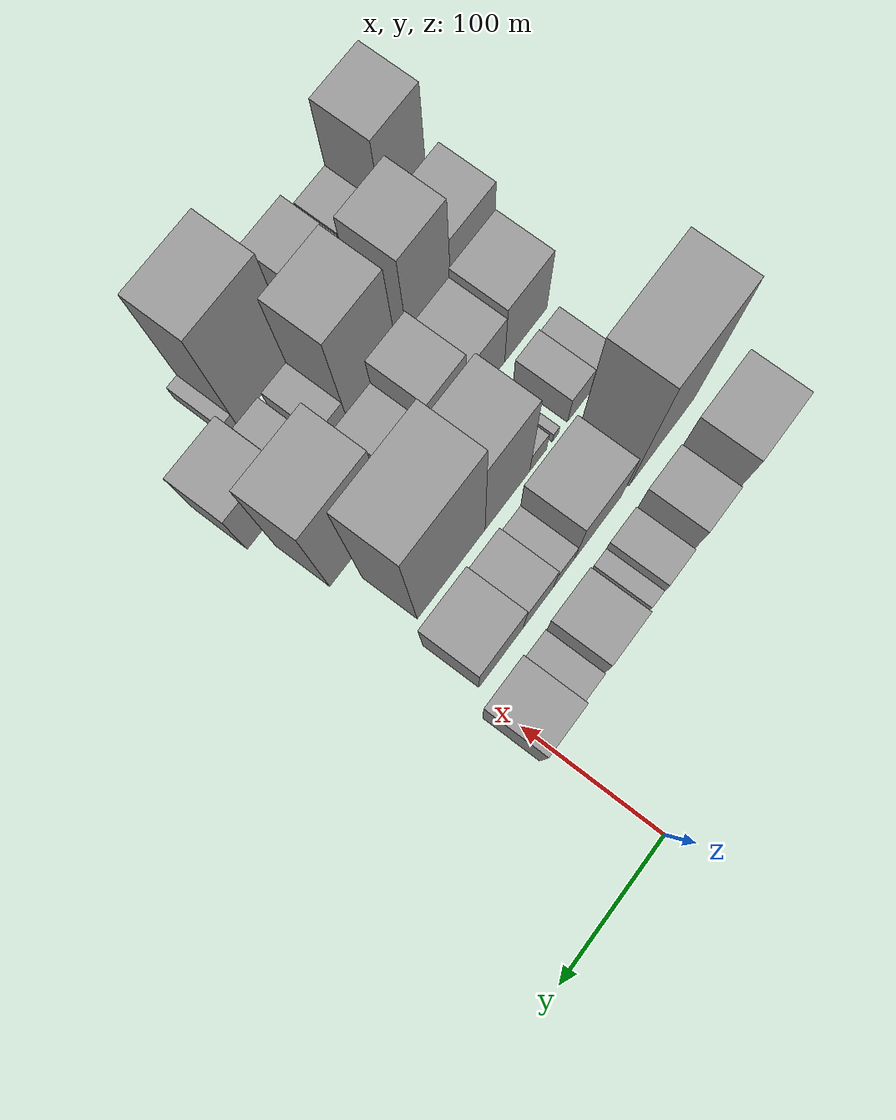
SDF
<sdf version="1.6">
 <world name="default">
  <model name="building_19">
   <static>1</static>
   <pose>100.0000 -204.6399 0 0.000000 0.000000 0.000000</pose>
   <link name="link">
    <pose>0 0 42.00 0 0 0</pose>
    <collision name="collision"><geometry><box><size>40.0000 46.9999 84.0000</size></box></geometry></collision>
    <visual name="visual">
     <cast_shadows>0</cast_shadows>
     <geometry><box><size>40.0000 46.9999 84.0000</size></box></geometry>
     <material>
      <script>
       <uri>model://grey_wall/materials/scripts</uri>
       <uri>model://grey_wall/materials/textures</uri>
       <name>vrc/grey_wall</name>
      </script>
     </material>
    </visual>
   </link>
  </model>
  <model name="building_20">
   <static>1</static>
   <pose>100.0000 -176.0807 0 0.000000 0.000000 0.000000</pose>
   <link name="link">
    <pose>0 0 10.50 0 0 0</pose>
    <collision name="collision"><geometry><box><size>40.0000 10.1186 21.0000</size></box></geometry></collision>
    <visual name="visual">
     <cast_shadows>0</cast_shadows>
     <geometry><box><size>40.0000 10.1186 21.0000</size></box></geometry>
     <material>
      <script>
       <uri>model://grey_wall/materials/scripts</uri>
       <uri>model://grey_wall/materials/textures</uri>
       <name>vrc/grey_wall</name>
      </script>
     </material>
    </visual>
   </link>
  </model>
  <model name="building_21">
   <static>1</static>
   <pose>100.0000 -155.4056 0 0.000000 0.000000 0.000000</pose>
   <link name="link">
    <pose>0 0 30.00 0 0 0</pose>
    <collision name="collision"><geometry><box><size>40.0000 31.2315 60.0000</size></box></geometry></collision>
    <visual name="visual">
     <cast_shadows>0</cast_shadows>
     <geometry><box><size>40.0000 31.2315 60.0000</size></box></geometry>
     <material>
      <script>
       <uri>model://grey_wall/materials/scripts</uri>
       <uri>model://grey_wall/materials/textures</uri>
       <name>vrc/grey_wall</name>
      </script>
     </material>
    </visual>
   </link>
  </model>
  <model name="building_22">
   <static>1</static>
   <pose>100.0000 -119.2429 0 0.000000 0.000000 0.000000</pose>
   <link name="link">
    <pose>0 0 22.50 0 0 0</pose>
    <collision name="collision"><geometry><box><size>40.0000 25.0939 45.0000</size></box></geometry></collision>
    <visual name="visual">
     <cast_shadows>0</cast_shadows>
     <geometry><box><size>40.0000 25.0939 45.0000</size></box></geometry>
     <material>
      <script>
       <uri>model://grey_wall/materials/scripts</uri>
       <uri>model://grey_wall/materials/textures</uri>
       <name>vrc/grey_wall</name>
      </script>
     </material>
    </visual>
   </link>
  </model>
  <model name="building_23">
   <static>1</static>
   <pose>100.0000 -100.5905 0 0.000000 0.000000 0.000000</pose>
   <link name="link">
    <pose>0 0 13.50 0 0 0</pose>
    <collision name="collision"><geometry><box><size>40.0000 12.2109 27.0000</size></box></geometry></collision>
    <visual name="visual">
     <cast_shadows>0</cast_shadows>
     <geometry><box><size>40.0000 12.2109 27.0000</size></box></geometry>
     <material>
      <script>
       <uri>model://grey_wall/materials/scripts</uri>
       <uri>model://grey_wall/materials/textures</uri>
       <name>vrc/grey_wall</name>
      </script>
     </material>
    </visual>
   </link>
  </model>
  <model name="building_24">
   <static>1</static>
   <pose>100.0000 -68.5323 0 0.000000 0.000000 0.000000</pose>
   <link name="link">
    <pose>0 0 30.00 0 0 0</pose>
    <collision name="collision"><geometry><box><size>40.0000 35.9056 60.0000</size></box></geometry></collision>
    <visual name="visual">
     <cast_shadows>0</cast_shadows>
     <geometry><box><size>40.0000 35.9056 60.0000</size></box></geometry>
     <material>
      <script>
       <uri>model://grey_wall/materials/scripts</uri>
       <uri>model://grey_wall/materials/textures</uri>
       <name>vrc/grey_wall</name>
      </script>
     </material>
    </visual>
   </link>
  </model>
  <model name="building_25">
   <static>1</static>
   <pose>100.0000 -35.7939 0 0.000000 0.000000 0.000000</pose>
   <link name="link">
    <pose>0 0 21.00 0 0 0</pose>
    <collision name="collision"><geometry><box><size>40.0000 23.5713 42.0000</size></box></geometry></collision>
    <visual name="visual">
     <cast_shadows>0</cast_shadows>
     <geometry><box><size>40.0000 23.5713 42.0000</size></box></geometry>
     <material>
      <script>
       <uri>model://grey_wall/materials/scripts</uri>
       <uri>model://grey_wall/materials/textures</uri>
       <name>vrc/grey_wall</name>
      </script>
     </material>
    </visual>
   </link>
  </model>
  <model name="building_26">
   <static>1</static>
   <pose>100.0000 -7.3441 0 0.000000 0.000000 0.000000</pose>
   <link name="link">
    <pose>0 0 46.50 0 0 0</pose>
    <collision name="collision"><geometry><box><size>40.0000 33.3283 93.0000</size></box></geometry></collision>
    <visual name="visual">
     <cast_shadows>0</cast_shadows>
     <geometry><box><size>40.0000 33.3283 93.0000</size></box></geometry>
     <material>
      <script>
       <uri>model://grey_wall/materials/scripts</uri>
       <uri>model://grey_wall/materials/textures</uri>
       <name>vrc/grey_wall</name>
      </script>
     </material>
    </visual>
   </link>
  </model>
  <model name="building_70">
   <static>1</static>
   <pose>152.0000 -183.7297 0 0.000000 0.000000 0.000000</pose>
   <link name="link">
    <pose>0 0 93.00 0 0 0</pose>
    <collision name="collision"><geometry><box><size>40.0000 66.1733 186.0000</size></box></geometry></collision>
    <visual name="visual">
     <cast_shadows>0</cast_shadows>
     <geometry><box><size>40.0000 66.1733 186.0000</size></box></geometry>
     <material>
      <script>
       <uri>model://grey_wall/materials/scripts</uri>
       <uri>model://grey_wall/materials/textures</uri>
       <name>vrc/grey_wall</name>
      </script>
     </material>
    </visual>
   </link>
  </model>
  <model name="building_71">
   <static>1</static>
   <pose>152.0000 -118.9052 0 0.000000 0.000000 0.000000</pose>
   <link name="link">
    <pose>0 0 43.50 0 0 0</pose>
    <collision name="collision"><geometry><box><size>40.0000 47.4757 87.0000</size></box></geometry></collision>
    <visual name="visual">
     <cast_shadows>0</cast_shadows>
     <geometry><box><size>40.0000 47.4757 87.0000</size></box></geometry>
     <material>
      <script>
       <uri>model://grey_wall/materials/scripts</uri>
       <uri>model://grey_wall/materials/textures</uri>
       <name>vrc/grey_wall</name>
      </script>
     </material>
    </visual>
   </link>
  </model>
  <model name="building_72">
   <static>1</static>
   <pose>152.0000 -85.0644 0 0.000000 0.000000 0.000000</pose>
   <link name="link">
    <pose>0 0 19.50 0 0 0</pose>
    <collision name="collision"><geometry><box><size>40.0000 20.2058 39.0000</size></box></geometry></collision>
    <visual name="visual">
     <cast_shadows>0</cast_shadows>
     <geometry><box><size>40.0000 20.2058 39.0000</size></box></geometry>
     <material>
      <script>
       <uri>model://grey_wall/materials/scripts</uri>
       <uri>model://grey_wall/materials/textures</uri>
       <name>vrc/grey_wall</name>
      </script>
     </material>
    </visual>
   </link>
  </model>
  <model name="building_73">
   <static>1</static>
   <pose>152.0000 -60.2462 0 0.000000 0.000000 0.000000</pose>
   <link name="link">
    <pose>0 0 28.50 0 0 0</pose>
    <collision name="collision"><geometry><box><size>40.0000 29.4305 57.0000</size></box></geometry></collision>
    <visual name="visual">
     <cast_shadows>0</cast_shadows>
     <geometry><box><size>40.0000 29.4305 57.0000</size></box></geometry>
     <material>
      <script>
       <uri>model://grey_wall/materials/scripts</uri>
       <uri>model://grey_wall/materials/textures</uri>
       <name>vrc/grey_wall</name>
      </script>
     </material>
    </visual>
   </link>
  </model>
  <model name="building_74">
   <static>1</static>
   <pose>152.0000 -24.3609 0 0.000000 0.000000 0.000000</pose>
   <link name="link">
    <pose>0 0 36.00 0 0 0</pose>
    <collision name="collision"><geometry><box><size>40.0000 42.3402 72.0000</size></box></geometry></collision>
    <visual name="visual">
     <cast_shadows>0</cast_shadows>
     <geometry><box><size>40.0000 42.3402 72.0000</size></box></geometry>
     <material>
      <script>
       <uri>model://grey_wall/materials/scripts</uri>
       <uri>model://grey_wall/materials/textures</uri>
       <name>vrc/grey_wall</name>
      </script>
     </material>
    </visual>
   </link>
  </model>
  <model name="building_123">
   <static>1</static>
   <pose>204.0000 -193.3924 0 0.000000 0.000000 0.000000</pose>
   <link name="link">
    <pose>0 0 18.00 0 0 0</pose>
    <collision name="collision"><geometry><box><size>40.0000 20.1651 36.0000</size></box></geometry></collision>
    <visual name="visual">
     <cast_shadows>0</cast_shadows>
     <geometry><box><size>40.0000 20.1651 36.0000</size></box></geometry>
     <material>
      <script>
       <uri>model://grey_wall/materials/scripts</uri>
       <uri>model://grey_wall/materials/textures</uri>
       <name>vrc/grey_wall</name>
      </script>
     </material>
    </visual>
   </link>
  </model>
  <model name="building_124">
   <static>1</static>
   <pose>204.0000 -171.8437 0 0.000000 0.000000 0.000000</pose>
   <link name="link">
    <pose>0 0 21.00 0 0 0</pose>
    <collision name="collision"><geometry><box><size>40.0000 22.9323 42.0000</size></box></geometry></collision>
    <visual name="visual">
     <cast_shadows>0</cast_shadows>
     <geometry><box><size>40.0000 22.9323 42.0000</size></box></geometry>
     <material>
      <script>
       <uri>model://grey_wall/materials/scripts</uri>
       <uri>model://grey_wall/materials/textures</uri>
       <name>vrc/grey_wall</name>
      </script>
     </material>
    </visual>
   </link>
  </model>
  <model name="building_125">
   <static>1</static>
   <pose>204.0000 -148.2840 0 0.000000 0.000000 0.000000</pose>
   <link name="link">
    <pose>0 0 7.50 0 0 0</pose>
    <collision name="collision"><geometry><box><size>40.0000 6.1870 15.0000</size></box></geometry></collision>
    <visual name="visual">
     <cast_shadows>0</cast_shadows>
     <geometry><box><size>40.0000 6.1870 15.0000</size></box></geometry>
     <material>
      <script>
       <uri>model://grey_wall/materials/scripts</uri>
       <uri>model://grey_wall/materials/textures</uri>
       <name>vrc/grey_wall</name>
      </script>
     </material>
    </visual>
   </link>
  </model>
  <model name="building_126">
   <static>1</static>
   <pose>204.0000 -130.8591 0 0.000000 0.000000 0.000000</pose>
   <link name="link">
    <pose>0 0 16.50 0 0 0</pose>
    <collision name="collision"><geometry><box><size>40.0000 16.6630 33.0000</size></box></geometry></collision>
    <visual name="visual">
     <cast_shadows>0</cast_shadows>
     <geometry><box><size>40.0000 16.6630 33.0000</size></box></geometry>
     <material>
      <script>
       <uri>model://grey_wall/materials/scripts</uri>
       <uri>model://grey_wall/materials/textures</uri>
       <name>vrc/grey_wall</name>
      </script>
     </material>
    </visual>
   </link>
  </model>
  <model name="building_127">
   <static>1</static>
   <pose>204.0000 -100.5731 0 0.000000 0.000000 0.000000</pose>
   <link name="link">
    <pose>0 0 70.50 0 0 0</pose>
    <collision name="collision"><geometry><box><size>40.0000 43.9089 141.0000</size></box></geometry></collision>
    <visual name="visual">
     <cast_shadows>0</cast_shadows>
     <geometry><box><size>40.0000 43.9089 141.0000</size></box></geometry>
     <material>
      <script>
       <uri>model://grey_wall/materials/scripts</uri>
       <uri>model://grey_wall/materials/textures</uri>
       <name>vrc/grey_wall</name>
      </script>
     </material>
    </visual>
   </link>
  </model>
  <model name="building_128">
   <static>1</static>
   <pose>204.0000 -46.0303 0 0.000000 0.000000 0.000000</pose>
   <link name="link">
    <pose>0 0 90.00 0 0 0</pose>
    <collision name="collision"><geometry><box><size>40.0000 65.1767 180.0000</size></box></geometry></collision>
    <visual name="visual">
     <cast_shadows>0</cast_shadows>
     <geometry><box><size>40.0000 65.1767 180.0000</size></box></geometry>
     <material>
      <script>
       <uri>model://grey_wall/materials/scripts</uri>
       <uri>model://grey_wall/materials/textures</uri>
       <name>vrc/grey_wall</name>
      </script>
     </material>
    </visual>
   </link>
  </model>
  <model name="building_177">
   <static>1</static>
   <pose>256.0000 -189.2890 0 0.000000 0.000000 0.000000</pose>
   <link name="link">
    <pose>0 0 42.00 0 0 0</pose>
    <collision name="collision"><geometry><box><size>40.0000 42.6374 84.0000</size></box></geometry></collision>
    <visual name="visual">
     <cast_shadows>0</cast_shadows>
     <geometry><box><size>40.0000 42.6374 84.0000</size></box></geometry>
     <material>
      <script>
       <uri>model://grey_wall/materials/scripts</uri>
       <uri>model://grey_wall/materials/textures</uri>
       <name>vrc/grey_wall</name>
      </script>
     </material>
    </visual>
   </link>
  </model>
  <model name="building_178">
   <static>1</static>
   <pose>256.0000 -149.2890 0 0.000000 0.000000 0.000000</pose>
   <link name="link">
    <pose>0 0 36.00 0 0 0</pose>
    <collision name="collision"><geometry><box><size>40.0000 37.3625 72.0000</size></box></geometry></collision>
    <visual name="visual">
     <cast_shadows>0</cast_shadows>
     <geometry><box><size>40.0000 37.3625 72.0000</size></box></geometry>
     <material>
      <script>
       <uri>model://grey_wall/materials/scripts</uri>
       <uri>model://grey_wall/materials/textures</uri>
       <name>vrc/grey_wall</name>
      </script>
     </material>
    </visual>
   </link>
  </model>
  <model name="building_179">
   <static>1</static>
   <pose>256.0000 -113.4923 0 0.000000 0.000000 0.000000</pose>
   <link name="link">
    <pose>0 0 49.50 0 0 0</pose>
    <collision name="collision"><geometry><box><size>40.0000 34.2308 99.0000</size></box></geometry></collision>
    <visual name="visual">
     <cast_shadows>0</cast_shadows>
     <geometry><box><size>40.0000 34.2308 99.0000</size></box></geometry>
     <material>
      <script>
       <uri>model://grey_wall/materials/scripts</uri>
       <uri>model://grey_wall/materials/textures</uri>
       <name>vrc/grey_wall</name>
      </script>
     </material>
    </visual>
   </link>
  </model>
  <model name="building_180">
   <static>1</static>
   <pose>256.0000 -80.3192 0 0.000000 0.000000 0.000000</pose>
   <link name="link">
    <pose>0 0 31.50 0 0 0</pose>
    <collision name="collision"><geometry><box><size>40.0000 32.1155 63.0000</size></box></geometry></collision>
    <visual name="visual">
     <cast_shadows>0</cast_shadows>
     <geometry><box><size>40.0000 32.1155 63.0000</size></box></geometry>
     <material>
      <script>
       <uri>model://grey_wall/materials/scripts</uri>
       <uri>model://grey_wall/materials/textures</uri>
       <name>vrc/grey_wall</name>
      </script>
     </material>
    </visual>
   </link>
  </model>
  <model name="building_181">
   <static>1</static>
   <pose>256.0000 -58.3119 0 0.000000 0.000000 0.000000</pose>
   <link name="link">
    <pose>0 0 13.50 0 0 0</pose>
    <collision name="collision"><geometry><box><size>40.0000 11.8991 27.0000</size></box></geometry></collision>
    <visual name="visual">
     <cast_shadows>0</cast_shadows>
     <geometry><box><size>40.0000 11.8991 27.0000</size></box></geometry>
     <material>
      <script>
       <uri>model://grey_wall/materials/scripts</uri>
       <uri>model://grey_wall/materials/textures</uri>
       <name>vrc/grey_wall</name>
      </script>
     </material>
    </visual>
   </link>
  </model>
  <model name="building_182">
   <static>1</static>
   <pose>256.0000 -25.1957 0 0.000000 0.000000 0.000000</pose>
   <link name="link">
    <pose>0 0 70.50 0 0 0</pose>
    <collision name="collision"><geometry><box><size>40.0000 54.3334 141.0000</size></box></geometry></collision>
    <visual name="visual">
     <cast_shadows>0</cast_shadows>
     <geometry><box><size>40.0000 54.3334 141.0000</size></box></geometry>
     <material>
      <script>
       <uri>model://grey_wall/materials/scripts</uri>
       <uri>model://grey_wall/materials/textures</uri>
       <name>vrc/grey_wall</name>
      </script>
     </material>
    </visual>
   </link>
  </model>
  <model name="building_224">
   <static>1</static>
   <pose>308.0000 -205.4859 0 0.000000 0.000000 0.000000</pose>
   <link name="link">
    <pose>0 0 37.50 0 0 0</pose>
    <collision name="collision"><geometry><box><size>40.0000 43.8414 75.0000</size></box></geometry></collision>
    <visual name="visual">
     <cast_shadows>0</cast_shadows>
     <geometry><box><size>40.0000 43.8414 75.0000</size></box></geometry>
     <material>
      <script>
       <uri>model://grey_wall/materials/scripts</uri>
       <uri>model://grey_wall/materials/textures</uri>
       <name>vrc/grey_wall</name>
      </script>
     </material>
    </visual>
   </link>
  </model>
  <model name="building_225">
   <static>1</static>
   <pose>308.0000 -162.4692 0 0.000000 0.000000 0.000000</pose>
   <link name="link">
    <pose>0 0 63.00 0 0 0</pose>
    <collision name="collision"><geometry><box><size>40.0000 42.1920 126.0000</size></box></geometry></collision>
    <visual name="visual">
     <cast_shadows>0</cast_shadows>
     <geometry><box><size>40.0000 42.1920 126.0000</size></box></geometry>
     <material>
      <script>
       <uri>model://grey_wall/materials/scripts</uri>
       <uri>model://grey_wall/materials/textures</uri>
       <name>vrc/grey_wall</name>
      </script>
     </material>
    </visual>
   </link>
  </model>
  <model name="building_226">
   <static>1</static>
   <pose>308.0000 -136.3173 0 0.000000 0.000000 0.000000</pose>
   <link name="link">
    <pose>0 0 10.50 0 0 0</pose>
    <collision name="collision"><geometry><box><size>40.0000 10.1119 21.0000</size></box></geometry></collision>
    <visual name="visual">
     <cast_shadows>0</cast_shadows>
     <geometry><box><size>40.0000 10.1119 21.0000</size></box></geometry>
     <material>
      <script>
       <uri>model://grey_wall/materials/scripts</uri>
       <uri>model://grey_wall/materials/textures</uri>
       <name>vrc/grey_wall</name>
      </script>
     </material>
    </visual>
   </link>
  </model>
  <model name="building_227">
   <static>1</static>
   <pose>308.0000 -106.7428 0 0.000000 0.000000 0.000000</pose>
   <link name="link">
    <pose>0 0 67.50 0 0 0</pose>
    <collision name="collision"><geometry><box><size>40.0000 49.0371 135.0000</size></box></geometry></collision>
    <visual name="visual">
     <cast_shadows>0</cast_shadows>
     <geometry><box><size>40.0000 49.0371 135.0000</size></box></geometry>
     <material>
      <script>
       <uri>model://grey_wall/materials/scripts</uri>
       <uri>model://grey_wall/materials/textures</uri>
       <name>vrc/grey_wall</name>
      </script>
     </material>
    </visual>
   </link>
  </model>
  <model name="building_228">
   <static>1</static>
   <pose>308.0000 -70.8927 0 0.000000 0.000000 0.000000</pose>
   <link name="link">
    <pose>0 0 19.50 0 0 0</pose>
    <collision name="collision"><geometry><box><size>40.0000 22.6629 39.0000</size></box></geometry></collision>
    <visual name="visual">
     <cast_shadows>0</cast_shadows>
     <geometry><box><size>40.0000 22.6629 39.0000</size></box></geometry>
     <material>
      <script>
       <uri>model://grey_wall/materials/scripts</uri>
       <uri>model://grey_wall/materials/textures</uri>
       <name>vrc/grey_wall</name>
      </script>
     </material>
    </visual>
   </link>
  </model>
  <model name="building_229">
   <static>1</static>
   <pose>308.0000 -45.1556 0 0.000000 0.000000 0.000000</pose>
   <link name="link">
    <pose>0 0 19.50 0 0 0</pose>
    <collision name="collision"><geometry><box><size>40.0000 22.8113 39.0000</size></box></geometry></collision>
    <visual name="visual">
     <cast_shadows>0</cast_shadows>
     <geometry><box><size>40.0000 22.8113 39.0000</size></box></geometry>
     <material>
      <script>
       <uri>model://grey_wall/materials/scripts</uri>
       <uri>model://grey_wall/materials/textures</uri>
       <name>vrc/grey_wall</name>
      </script>
     </material>
    </visual>
   </link>
  </model>
  <model name="building_230">
   <static>1</static>
   <pose>308.0000 -8.1657 0 0.000000 0.000000 0.000000</pose>
   <link name="link">
    <pose>0 0 37.50 0 0 0</pose>
    <collision name="collision"><geometry><box><size>40.0000 43.1686 75.0000</size></box></geometry></collision>
    <visual name="visual">
     <cast_shadows>0</cast_shadows>
     <geometry><box><size>40.0000 43.1686 75.0000</size></box></geometry>
     <material>
      <script>
       <uri>model://grey_wall/materials/scripts</uri>
       <uri>model://grey_wall/materials/textures</uri>
       <name>vrc/grey_wall</name>
      </script>
     </material>
    </visual>
   </link>
  </model>
  <model name="building_272">
   <static>1</static>
   <pose>360.0000 -207.3884 0 0.000000 0.000000 0.000000</pose>
   <link name="link">
    <pose>0 0 61.50 0 0 0</pose>
    <collision name="collision"><geometry><box><size>40.0000 41.8455 123.0000</size></box></geometry></collision>
    <visual name="visual">
     <cast_shadows>0</cast_shadows>
     <geometry><box><size>40.0000 41.8455 123.0000</size></box></geometry>
     <material>
      <script>
       <uri>model://grey_wall/materials/scripts</uri>
       <uri>model://grey_wall/materials/textures</uri>
       <name>vrc/grey_wall</name>
      </script>
     </material>
    </visual>
   </link>
  </model>
  <model name="building_273">
   <static>1</static>
   <pose>360.0000 -172.0146 0 0.000000 0.000000 0.000000</pose>
   <link name="link">
    <pose>0 0 25.50 0 0 0</pose>
    <collision name="collision"><geometry><box><size>40.0000 28.9021 51.0000</size></box></geometry></collision>
    <visual name="visual">
     <cast_shadows>0</cast_shadows>
     <geometry><box><size>40.0000 28.9021 51.0000</size></box></geometry>
     <material>
      <script>
       <uri>model://grey_wall/materials/scripts</uri>
       <uri>model://grey_wall/materials/textures</uri>
       <name>vrc/grey_wall</name>
      </script>
     </material>
    </visual>
   </link>
  </model>
  <model name="building_274">
   <static>1</static>
   <pose>360.0000 -131.7565 0 0.000000 0.000000 0.000000</pose>
   <link name="link">
    <pose>0 0 36.00 0 0 0</pose>
    <collision name="collision"><geometry><box><size>40.0000 37.6142 72.0000</size></box></geometry></collision>
    <visual name="visual">
     <cast_shadows>0</cast_shadows>
     <geometry><box><size>40.0000 37.6142 72.0000</size></box></geometry>
     <material>
      <script>
       <uri>model://grey_wall/materials/scripts</uri>
       <uri>model://grey_wall/materials/textures</uri>
       <name>vrc/grey_wall</name>
      </script>
     </material>
    </visual>
   </link>
  </model>
  <model name="building_275">
   <static>1</static>
   <pose>360.0000 -105.2643 0 0.000000 0.000000 0.000000</pose>
   <link name="link">
    <pose>0 0 15.00 0 0 0</pose>
    <collision name="collision"><geometry><box><size>40.0000 15.3701 30.0000</size></box></geometry></collision>
    <visual name="visual">
     <cast_shadows>0</cast_shadows>
     <geometry><box><size>40.0000 15.3701 30.0000</size></box></geometry>
     <material>
      <script>
       <uri>model://grey_wall/materials/scripts</uri>
       <uri>model://grey_wall/materials/textures</uri>
       <name>vrc/grey_wall</name>
      </script>
     </material>
    </visual>
   </link>
  </model>
  <model name="building_276">
   <static>1</static>
   <pose>360.0000 -69.4965 0 0.000000 0.000000 0.000000</pose>
   <link name="link">
    <pose>0 0 72.00 0 0 0</pose>
    <collision name="collision"><geometry><box><size>40.0000 56.1655 144.0000</size></box></geometry></collision>
    <visual name="visual">
     <cast_shadows>0</cast_shadows>
     <geometry><box><size>40.0000 56.1655 144.0000</size></box></geometry>
     <material>
      <script>
       <uri>model://grey_wall/materials/scripts</uri>
       <uri>model://grey_wall/materials/textures</uri>
       <name>vrc/grey_wall</name>
      </script>
     </material>
    </visual>
   </link>
  </model>
  <model name="building_277">
   <static>1</static>
   <pose>360.0000 -36.6083 0 0.000000 0.000000 0.000000</pose>
   <link name="link">
    <pose>0 0 10.50 0 0 0</pose>
    <collision name="collision"><geometry><box><size>40.0000 9.6109 21.0000</size></box></geometry></collision>
    <visual name="visual">
     <cast_shadows>0</cast_shadows>
     <geometry><box><size>40.0000 9.6109 21.0000</size></box></geometry>
     <material>
      <script>
       <uri>model://grey_wall/materials/scripts</uri>
       <uri>model://grey_wall/materials/textures</uri>
       <name>vrc/grey_wall</name>
      </script>
     </material>
    </visual>
   </link>
  </model>
 </world>
</sdf>
